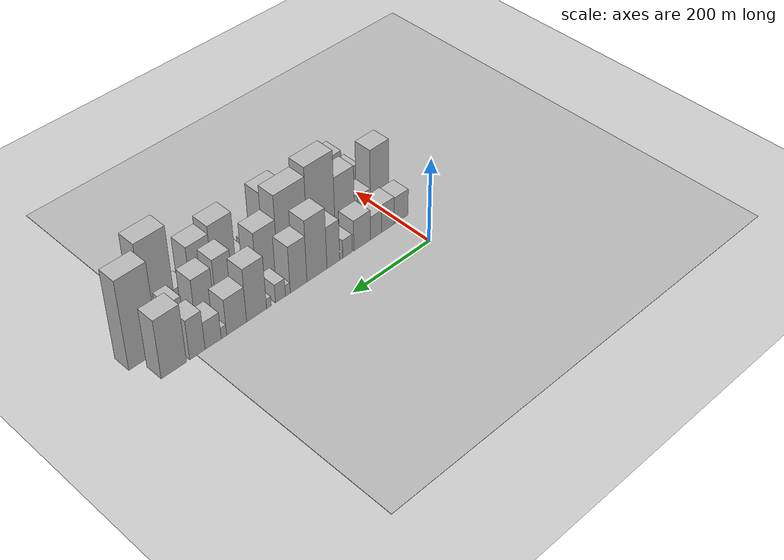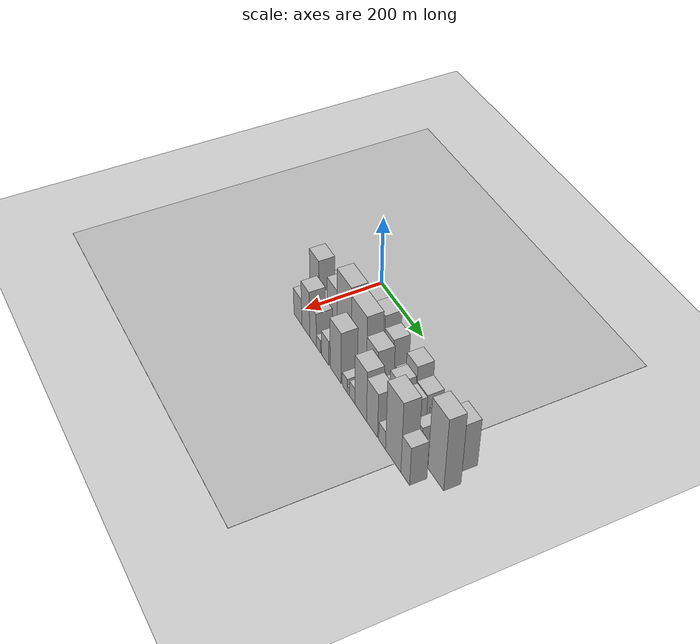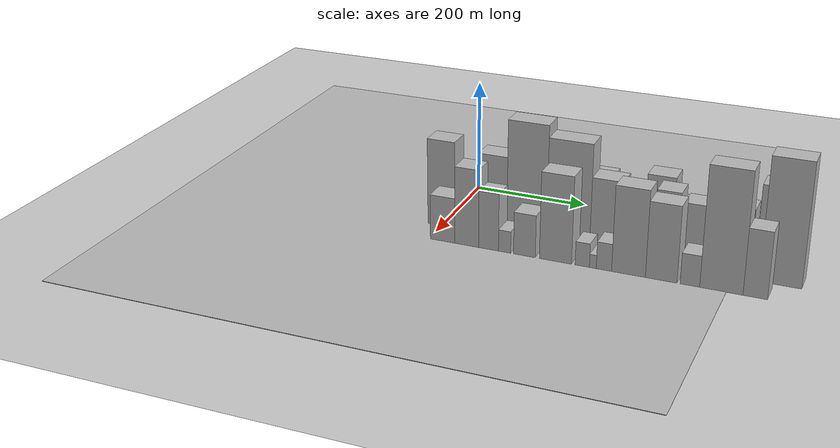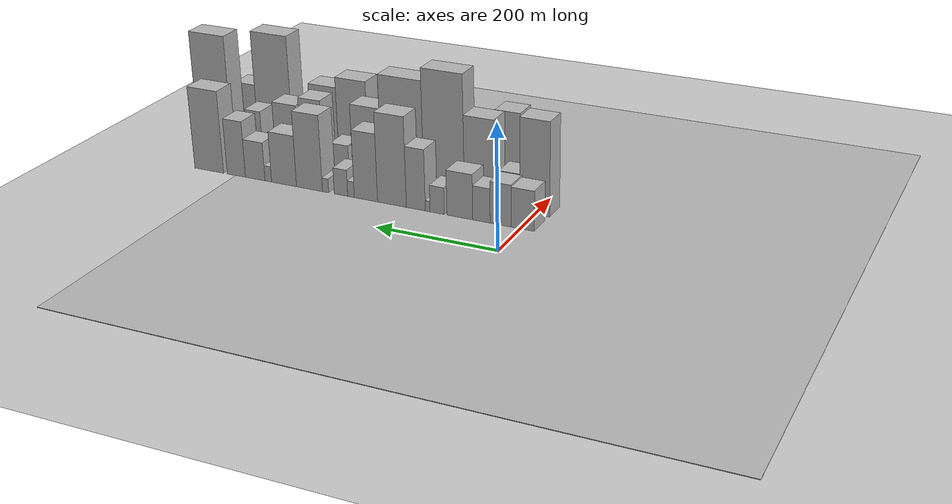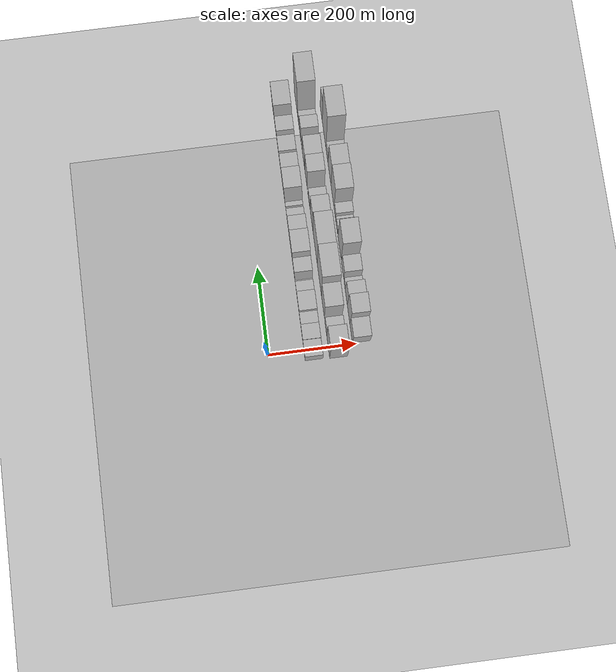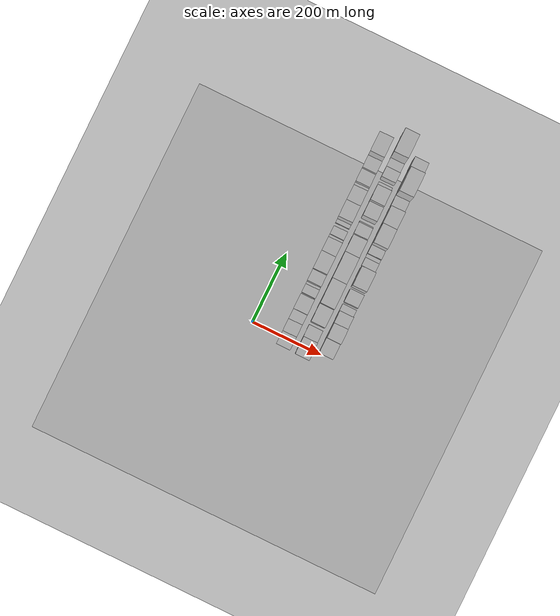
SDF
<sdf version="1.6">
 <world name="default">
  <include><name>ground_plane_1</name><uri>model://HANNAS_ground_plane</uri></include>
  <include>
   <name>ground_plane_2</name>
   <uri>model://HANNAS_ground_plane</uri>
   <pose>100 0 0  0 0 0</pose>
  </include>
  <model name="building_17">
   <static>1</static>
   <pose>100.0000 -4.5980 0 0.000000 0.000000 0.000000</pose>
   <link name="link">
    <pose>0 0 33.00 0 0 0</pose>
    <collision name="collision"><geometry><box><size>40.0000 37.7381 66.0000</size></box></geometry></collision>
    <visual name="visual">
     <cast_shadows>0</cast_shadows>
     <geometry><box><size>40.0000 37.7381 66.0000</size></box></geometry>
     <material>
      <script>
       <uri>model://HANNAS_wall/materials/scripts</uri>
       <uri>model://HANNAS_wall/materials/textures</uri>
       <name>vrc/HANNAS_wall</name>
      </script>
     </material>
    </visual>
   </link>
  </model>
  <model name="building_18">
   <static>1</static>
   <pose>100.0000 31.6166 0 0.000000 0.000000 0.000000</pose>
   <link name="link">
    <pose>0 0 34.50 0 0 0</pose>
    <collision name="collision"><geometry><box><size>40.0000 34.6912 69.0000</size></box></geometry></collision>
    <visual name="visual">
     <cast_shadows>0</cast_shadows>
     <geometry><box><size>40.0000 34.6912 69.0000</size></box></geometry>
     <material>
      <script>
       <uri>model://HANNAS_wall/materials/scripts</uri>
       <uri>model://HANNAS_wall/materials/textures</uri>
       <name>vrc/HANNAS_wall</name>
      </script>
     </material>
    </visual>
   </link>
  </model>
  <model name="building_19">
   <static>1</static>
   <pose>100.0000 63.4037 0 0.000000 0.000000 0.000000</pose>
   <link name="link">
    <pose>0 0 28.50 0 0 0</pose>
    <collision name="collision"><geometry><box><size>40.0000 28.8829 57.0000</size></box></geometry></collision>
    <visual name="visual">
     <cast_shadows>0</cast_shadows>
     <geometry><box><size>40.0000 28.8829 57.0000</size></box></geometry>
     <material>
      <script>
       <uri>model://HANNAS_wall/materials/scripts</uri>
       <uri>model://HANNAS_wall/materials/textures</uri>
       <name>vrc/HANNAS_wall</name>
      </script>
     </material>
    </visual>
   </link>
  </model>
  <model name="building_20">
   <static>1</static>
   <pose>100.0000 99.6497 0 0.000000 0.000000 0.000000</pose>
   <link name="link">
    <pose>0 0 37.50 0 0 0</pose>
    <collision name="collision"><geometry><box><size>40.0000 43.6092 75.0000</size></box></geometry></collision>
    <visual name="visual">
     <cast_shadows>0</cast_shadows>
     <geometry><box><size>40.0000 43.6092 75.0000</size></box></geometry>
     <material>
      <script>
       <uri>model://HANNAS_wall/materials/scripts</uri>
       <uri>model://HANNAS_wall/materials/textures</uri>
       <name>vrc/HANNAS_wall</name>
      </script>
     </material>
    </visual>
   </link>
  </model>
  <model name="building_21">
   <static>1</static>
   <pose>100.0000 137.8043 0 0.000000 0.000000 0.000000</pose>
   <link name="link">
    <pose>0 0 22.50 0 0 0</pose>
    <collision name="collision"><geometry><box><size>40.0000 24.7000 45.0000</size></box></geometry></collision>
    <visual name="visual">
     <cast_shadows>0</cast_shadows>
     <geometry><box><size>40.0000 24.7000 45.0000</size></box></geometry>
     <material>
      <script>
       <uri>model://HANNAS_wall/materials/scripts</uri>
       <uri>model://HANNAS_wall/materials/textures</uri>
       <name>vrc/HANNAS_wall</name>
      </script>
     </material>
    </visual>
   </link>
  </model>
  <model name="building_22">
   <static>1</static>
   <pose>100.0000 154.0484 0 0.000000 0.000000 0.000000</pose>
   <link name="link">
    <pose>0 0 9.00 0 0 0</pose>
    <collision name="collision"><geometry><box><size>40.0000 7.7882 18.0000</size></box></geometry></collision>
    <visual name="visual">
     <cast_shadows>0</cast_shadows>
     <geometry><box><size>40.0000 7.7882 18.0000</size></box></geometry>
     <material>
      <script>
       <uri>model://HANNAS_wall/materials/scripts</uri>
       <uri>model://HANNAS_wall/materials/textures</uri>
       <name>vrc/HANNAS_wall</name>
      </script>
     </material>
    </visual>
   </link>
  </model>
  <model name="building_23">
   <static>1</static>
   <pose>100.0000 174.3173 0 0.000000 0.000000 0.000000</pose>
   <link name="link">
    <pose>0 0 51.00 0 0 0</pose>
    <collision name="collision"><geometry><box><size>40.0000 32.7497 102.0000</size></box></geometry></collision>
    <visual name="visual">
     <cast_shadows>0</cast_shadows>
     <geometry><box><size>40.0000 32.7497 102.0000</size></box></geometry>
     <material>
      <script>
       <uri>model://HANNAS_wall/materials/scripts</uri>
       <uri>model://HANNAS_wall/materials/textures</uri>
       <name>vrc/HANNAS_wall</name>
      </script>
     </material>
    </visual>
   </link>
  </model>
  <model name="building_24">
   <static>1</static>
   <pose>100.0000 215.7689 0 0.000000 0.000000 0.000000</pose>
   <link name="link">
    <pose>0 0 75.00 0 0 0</pose>
    <collision name="collision"><geometry><box><size>40.0000 50.1534 150.0000</size></box></geometry></collision>
    <visual name="visual">
     <cast_shadows>0</cast_shadows>
     <geometry><box><size>40.0000 50.1534 150.0000</size></box></geometry>
     <material>
      <script>
       <uri>model://HANNAS_wall/materials/scripts</uri>
       <uri>model://HANNAS_wall/materials/textures</uri>
       <name>vrc/HANNAS_wall</name>
      </script>
     </material>
    </visual>
   </link>
  </model>
  <model name="building_25">
   <static>1</static>
   <pose>100.0000 261.4154 0 0.000000 0.000000 0.000000</pose>
   <link name="link">
    <pose>0 0 57.00 0 0 0</pose>
    <collision name="collision"><geometry><box><size>40.0000 41.1397 114.0000</size></box></geometry></collision>
    <visual name="visual">
     <cast_shadows>0</cast_shadows>
     <geometry><box><size>40.0000 41.1397 114.0000</size></box></geometry>
     <material>
      <script>
       <uri>model://HANNAS_wall/materials/scripts</uri>
       <uri>model://HANNAS_wall/materials/textures</uri>
       <name>vrc/HANNAS_wall</name>
      </script>
     </material>
    </visual>
   </link>
  </model>
  <model name="building_26">
   <static>1</static>
   <pose>100.0000 287.8555 0 0.000000 0.000000 0.000000</pose>
   <link name="link">
    <pose>0 0 13.50 0 0 0</pose>
    <collision name="collision"><geometry><box><size>40.0000 11.7404 27.0000</size></box></geometry></collision>
    <visual name="visual">
     <cast_shadows>0</cast_shadows>
     <geometry><box><size>40.0000 11.7404 27.0000</size></box></geometry>
     <material>
      <script>
       <uri>model://HANNAS_wall/materials/scripts</uri>
       <uri>model://HANNAS_wall/materials/textures</uri>
       <name>vrc/HANNAS_wall</name>
      </script>
     </material>
    </visual>
   </link>
  </model>
  <model name="building_27">
   <static>1</static>
   <pose>100.0000 305.8213 0 0.000000 0.000000 0.000000</pose>
   <link name="link">
    <pose>0 0 22.50 0 0 0</pose>
    <collision name="collision"><geometry><box><size>40.0000 24.1912 45.0000</size></box></geometry></collision>
    <visual name="visual">
     <cast_shadows>0</cast_shadows>
     <geometry><box><size>40.0000 24.1912 45.0000</size></box></geometry>
     <material>
      <script>
       <uri>model://HANNAS_wall/materials/scripts</uri>
       <uri>model://HANNAS_wall/materials/textures</uri>
       <name>vrc/HANNAS_wall</name>
      </script>
     </material>
    </visual>
   </link>
  </model>
  <model name="building_28">
   <static>1</static>
   <pose>100.0000 333.5547 0 0.000000 0.000000 0.000000</pose>
   <link name="link">
    <pose>0 0 12.00 0 0 0</pose>
    <collision name="collision"><geometry><box><size>40.0000 11.2756 24.0000</size></box></geometry></collision>
    <visual name="visual">
     <cast_shadows>0</cast_shadows>
     <geometry><box><size>40.0000 11.2756 24.0000</size></box></geometry>
     <material>
      <script>
       <uri>model://HANNAS_wall/materials/scripts</uri>
       <uri>model://HANNAS_wall/materials/textures</uri>
       <name>vrc/HANNAS_wall</name>
      </script>
     </material>
    </visual>
   </link>
  </model>
  <model name="building_29">
   <static>1</static>
   <pose>100.0000 362.8317 0 0.000000 0.000000 0.000000</pose>
   <link name="link">
    <pose>0 0 64.50 0 0 0</pose>
    <collision name="collision"><geometry><box><size>40.0000 47.2785 129.0000</size></box></geometry></collision>
    <visual name="visual">
     <cast_shadows>0</cast_shadows>
     <geometry><box><size>40.0000 47.2785 129.0000</size></box></geometry>
     <material>
      <script>
       <uri>model://HANNAS_wall/materials/scripts</uri>
       <uri>model://HANNAS_wall/materials/textures</uri>
       <name>vrc/HANNAS_wall</name>
      </script>
     </material>
    </visual>
   </link>
  </model>
  <model name="building_30">
   <static>1</static>
   <pose>100.0000 409.5287 0 0.000000 0.000000 0.000000</pose>
   <link name="link">
    <pose>0 0 43.50 0 0 0</pose>
    <collision name="collision"><geometry><box><size>40.0000 46.1154 87.0000</size></box></geometry></collision>
    <visual name="visual">
     <cast_shadows>0</cast_shadows>
     <geometry><box><size>40.0000 46.1154 87.0000</size></box></geometry>
     <material>
      <script>
       <uri>model://HANNAS_wall/materials/scripts</uri>
       <uri>model://HANNAS_wall/materials/textures</uri>
       <name>vrc/HANNAS_wall</name>
      </script>
     </material>
    </visual>
   </link>
  </model>
  <model name="building_31">
   <static>1</static>
   <pose>100.0000 438.7715 0 0.000000 0.000000 0.000000</pose>
   <link name="link">
    <pose>0 0 13.50 0 0 0</pose>
    <collision name="collision"><geometry><box><size>40.0000 12.3703 27.0000</size></box></geometry></collision>
    <visual name="visual">
     <cast_shadows>0</cast_shadows>
     <geometry><box><size>40.0000 12.3703 27.0000</size></box></geometry>
     <material>
      <script>
       <uri>model://HANNAS_wall/materials/scripts</uri>
       <uri>model://HANNAS_wall/materials/textures</uri>
       <name>vrc/HANNAS_wall</name>
      </script>
     </material>
    </visual>
   </link>
  </model>
  <model name="building_32">
   <static>1</static>
   <pose>100.0000 463.2627 0 0.000000 0.000000 0.000000</pose>
   <link name="link">
    <pose>0 0 33.00 0 0 0</pose>
    <collision name="collision"><geometry><box><size>40.0000 36.6119 66.0000</size></box></geometry></collision>
    <visual name="visual">
     <cast_shadows>0</cast_shadows>
     <geometry><box><size>40.0000 36.6119 66.0000</size></box></geometry>
     <material>
      <script>
       <uri>model://HANNAS_wall/materials/scripts</uri>
       <uri>model://HANNAS_wall/materials/textures</uri>
       <name>vrc/HANNAS_wall</name>
      </script>
     </material>
    </visual>
   </link>
  </model>
  <model name="building_33">
   <static>1</static>
   <pose>100.0000 498.8720 0 0.000000 0.000000 0.000000</pose>
   <link name="link">
    <pose>0 0 48.00 0 0 0</pose>
    <collision name="collision"><geometry><box><size>40.0000 34.6068 96.0000</size></box></geometry></collision>
    <visual name="visual">
     <cast_shadows>0</cast_shadows>
     <geometry><box><size>40.0000 34.6068 96.0000</size></box></geometry>
     <material>
      <script>
       <uri>model://HANNAS_wall/materials/scripts</uri>
       <uri>model://HANNAS_wall/materials/textures</uri>
       <name>vrc/HANNAS_wall</name>
      </script>
     </material>
    </visual>
   </link>
  </model>
  <model name="building_34">
   <static>1</static>
   <pose>100.0000 550.8680 0 0.000000 0.000000 0.000000</pose>
   <link name="link">
    <pose>0 0 70.50 0 0 0</pose>
    <collision name="collision"><geometry><box><size>40.0000 55.3852 141.0000</size></box></geometry></collision>
    <visual name="visual">
     <cast_shadows>0</cast_shadows>
     <geometry><box><size>40.0000 55.3852 141.0000</size></box></geometry>
     <material>
      <script>
       <uri>model://HANNAS_wall/materials/scripts</uri>
       <uri>model://HANNAS_wall/materials/textures</uri>
       <name>vrc/HANNAS_wall</name>
      </script>
     </material>
    </visual>
   </link>
  </model>
  <model name="building_53">
   <static>1</static>
   <pose>155.0000 -0.5026 0 0.000000 0.000000 0.000000</pose>
   <link name="link">
    <pose>0 0 78.00 0 0 0</pose>
    <collision name="collision"><geometry><box><size>40.0000 49.4370 156.0000</size></box></geometry></collision>
    <visual name="visual">
     <cast_shadows>0</cast_shadows>
     <geometry><box><size>40.0000 49.4370 156.0000</size></box></geometry>
     <material>
      <script>
       <uri>model://HANNAS_wall/materials/scripts</uri>
       <uri>model://HANNAS_wall/materials/textures</uri>
       <name>vrc/HANNAS_wall</name>
      </script>
     </material>
    </visual>
   </link>
  </model>
  <model name="building_54">
   <static>1</static>
   <pose>155.0000 41.4349 0 0.000000 0.000000 0.000000</pose>
   <link name="link">
    <pose>0 0 31.50 0 0 0</pose>
    <collision name="collision"><geometry><box><size>40.0000 34.4380 63.0000</size></box></geometry></collision>
    <visual name="visual">
     <cast_shadows>0</cast_shadows>
     <geometry><box><size>40.0000 34.4380 63.0000</size></box></geometry>
     <material>
      <script>
       <uri>model://HANNAS_wall/materials/scripts</uri>
       <uri>model://HANNAS_wall/materials/textures</uri>
       <name>vrc/HANNAS_wall</name>
      </script>
     </material>
    </visual>
   </link>
  </model>
  <model name="building_55">
   <static>1</static>
   <pose>155.0000 92.3172 0 0.000000 0.000000 0.000000</pose>
   <link name="link">
    <pose>0 0 72.00 0 0 0</pose>
    <collision name="collision"><geometry><box><size>40.0000 51.3265 144.0000</size></box></geometry></collision>
    <visual name="visual">
     <cast_shadows>0</cast_shadows>
     <geometry><box><size>40.0000 51.3265 144.0000</size></box></geometry>
     <material>
      <script>
       <uri>model://HANNAS_wall/materials/scripts</uri>
       <uri>model://HANNAS_wall/materials/textures</uri>
       <name>vrc/HANNAS_wall</name>
      </script>
     </material>
    </visual>
   </link>
  </model>
  <model name="building_56">
   <static>1</static>
   <pose>155.0000 153.0418 0 0.000000 0.000000 0.000000</pose>
   <link name="link">
    <pose>0 0 105.00 0 0 0</pose>
    <collision name="collision"><geometry><box><size>40.0000 70.1226 210.0000</size></box></geometry></collision>
    <visual name="visual">
     <cast_shadows>0</cast_shadows>
     <geometry><box><size>40.0000 70.1226 210.0000</size></box></geometry>
     <material>
      <script>
       <uri>model://HANNAS_wall/materials/scripts</uri>
       <uri>model://HANNAS_wall/materials/textures</uri>
       <name>vrc/HANNAS_wall</name>
      </script>
     </material>
    </visual>
   </link>
  </model>
  <model name="building_57">
   <static>1</static>
   <pose>155.0000 225.3445 0 0.000000 0.000000 0.000000</pose>
   <link name="link">
    <pose>0 0 94.50 0 0 0</pose>
    <collision name="collision"><geometry><box><size>40.0000 74.4828 189.0000</size></box></geometry></collision>
    <visual name="visual">
     <cast_shadows>0</cast_shadows>
     <geometry><box><size>40.0000 74.4828 189.0000</size></box></geometry>
     <material>
      <script>
       <uri>model://HANNAS_wall/materials/scripts</uri>
       <uri>model://HANNAS_wall/materials/textures</uri>
       <name>vrc/HANNAS_wall</name>
      </script>
     </material>
    </visual>
   </link>
  </model>
  <model name="building_58">
   <static>1</static>
   <pose>155.0000 288.5714 0 0.000000 0.000000 0.000000</pose>
   <link name="link">
    <pose>0 0 66.00 0 0 0</pose>
    <collision name="collision"><geometry><box><size>40.0000 51.9711 132.0000</size></box></geometry></collision>
    <visual name="visual">
     <cast_shadows>0</cast_shadows>
     <geometry><box><size>40.0000 51.9711 132.0000</size></box></geometry>
     <material>
      <script>
       <uri>model://HANNAS_wall/materials/scripts</uri>
       <uri>model://HANNAS_wall/materials/textures</uri>
       <name>vrc/HANNAS_wall</name>
      </script>
     </material>
    </visual>
   </link>
  </model>
  <model name="building_59">
   <static>1</static>
   <pose>155.0000 337.6571 0 0.000000 0.000000 0.000000</pose>
   <link name="link">
    <pose>0 0 30.00 0 0 0</pose>
    <collision name="collision"><geometry><box><size>40.0000 32.2003 60.0000</size></box></geometry></collision>
    <visual name="visual">
     <cast_shadows>0</cast_shadows>
     <geometry><box><size>40.0000 32.2003 60.0000</size></box></geometry>
     <material>
      <script>
       <uri>model://HANNAS_wall/materials/scripts</uri>
       <uri>model://HANNAS_wall/materials/textures</uri>
       <name>vrc/HANNAS_wall</name>
      </script>
     </material>
    </visual>
   </link>
  </model>
  <model name="building_60">
   <static>1</static>
   <pose>155.0000 356.8376 0 0.000000 0.000000 0.000000</pose>
   <link name="link">
    <pose>0 0 7.50 0 0 0</pose>
    <collision name="collision"><geometry><box><size>40.0000 6.1606 15.0000</size></box></geometry></collision>
    <visual name="visual">
     <cast_shadows>0</cast_shadows>
     <geometry><box><size>40.0000 6.1606 15.0000</size></box></geometry>
     <material>
      <script>
       <uri>model://HANNAS_wall/materials/scripts</uri>
       <uri>model://HANNAS_wall/materials/textures</uri>
       <name>vrc/HANNAS_wall</name>
      </script>
     </material>
    </visual>
   </link>
  </model>
  <model name="building_61">
   <static>1</static>
   <pose>155.0000 388.8558 0 0.000000 0.000000 0.000000</pose>
   <link name="link">
    <pose>0 0 64.50 0 0 0</pose>
    <collision name="collision"><geometry><box><size>40.0000 39.8759 129.0000</size></box></geometry></collision>
    <visual name="visual">
     <cast_shadows>0</cast_shadows>
     <geometry><box><size>40.0000 39.8759 129.0000</size></box></geometry>
     <material>
      <script>
       <uri>model://HANNAS_wall/materials/scripts</uri>
       <uri>model://HANNAS_wall/materials/textures</uri>
       <name>vrc/HANNAS_wall</name>
      </script>
     </material>
    </visual>
   </link>
  </model>
  <model name="building_62">
   <static>1</static>
   <pose>155.0000 435.7401 0 0.000000 0.000000 0.000000</pose>
   <link name="link">
    <pose>0 0 57.00 0 0 0</pose>
    <collision name="collision"><geometry><box><size>40.0000 43.8927 114.0000</size></box></geometry></collision>
    <visual name="visual">
     <cast_shadows>0</cast_shadows>
     <geometry><box><size>40.0000 43.8927 114.0000</size></box></geometry>
     <material>
      <script>
       <uri>model://HANNAS_wall/materials/scripts</uri>
       <uri>model://HANNAS_wall/materials/textures</uri>
       <name>vrc/HANNAS_wall</name>
      </script>
     </material>
    </visual>
   </link>
  </model>
  <model name="building_63">
   <static>1</static>
   <pose>155.0000 461.4348 0 0.000000 0.000000 0.000000</pose>
   <link name="link">
    <pose>0 0 9.00 0 0 0</pose>
    <collision name="collision"><geometry><box><size>40.0000 7.4967 18.0000</size></box></geometry></collision>
    <visual name="visual">
     <cast_shadows>0</cast_shadows>
     <geometry><box><size>40.0000 7.4967 18.0000</size></box></geometry>
     <material>
      <script>
       <uri>model://HANNAS_wall/materials/scripts</uri>
       <uri>model://HANNAS_wall/materials/textures</uri>
       <name>vrc/HANNAS_wall</name>
      </script>
     </material>
    </visual>
   </link>
  </model>
  <model name="building_64">
   <static>1</static>
   <pose>155.0000 469.5777 0 0.000000 0.000000 0.000000</pose>
   <link name="link">
    <pose>0 0 9.00 0 0 0</pose>
    <collision name="collision"><geometry><box><size>40.0000 8.7890 18.0000</size></box></geometry></collision>
    <visual name="visual">
     <cast_shadows>0</cast_shadows>
     <geometry><box><size>40.0000 8.7890 18.0000</size></box></geometry>
     <material>
      <script>
       <uri>model://HANNAS_wall/materials/scripts</uri>
       <uri>model://HANNAS_wall/materials/textures</uri>
       <name>vrc/HANNAS_wall</name>
      </script>
     </material>
    </visual>
   </link>
  </model>
  <model name="building_65">
   <static>1</static>
   <pose>155.0000 496.5328 0 0.000000 0.000000 0.000000</pose>
   <link name="link">
    <pose>0 0 46.50 0 0 0</pose>
    <collision name="collision"><geometry><box><size>40.0000 29.1213 93.0000</size></box></geometry></collision>
    <visual name="visual">
     <cast_shadows>0</cast_shadows>
     <geometry><box><size>40.0000 29.1213 93.0000</size></box></geometry>
     <material>
      <script>
       <uri>model://HANNAS_wall/materials/scripts</uri>
       <uri>model://HANNAS_wall/materials/textures</uri>
       <name>vrc/HANNAS_wall</name>
      </script>
     </material>
    </visual>
   </link>
  </model>
  <model name="building_66">
   <static>1</static>
   <pose>155.0000 525.5762 0 0.000000 0.000000 0.000000</pose>
   <link name="link">
    <pose>0 0 25.50 0 0 0</pose>
    <collision name="collision"><geometry><box><size>40.0000 28.9656 51.0000</size></box></geometry></collision>
    <visual name="visual">
     <cast_shadows>0</cast_shadows>
     <geometry><box><size>40.0000 28.9656 51.0000</size></box></geometry>
     <material>
      <script>
       <uri>model://HANNAS_wall/materials/scripts</uri>
       <uri>model://HANNAS_wall/materials/textures</uri>
       <name>vrc/HANNAS_wall</name>
      </script>
     </material>
    </visual>
   </link>
  </model>
  <model name="building_67">
   <static>1</static>
   <pose>155.0000 572.9948 0 0.000000 0.000000 0.000000</pose>
   <link name="link">
    <pose>0 0 106.50 0 0 0</pose>
    <collision name="collision"><geometry><box><size>40.0000 65.8716 213.0000</size></box></geometry></collision>
    <visual name="visual">
     <cast_shadows>0</cast_shadows>
     <geometry><box><size>40.0000 65.8716 213.0000</size></box></geometry>
     <material>
      <script>
       <uri>model://HANNAS_wall/materials/scripts</uri>
       <uri>model://HANNAS_wall/materials/textures</uri>
       <name>vrc/HANNAS_wall</name>
      </script>
     </material>
    </visual>
   </link>
  </model>
  <model name="building_82">
   <static>1</static>
   <pose>210.0000 25.0459 0 0.000000 0.000000 0.000000</pose>
   <link name="link">
    <pose>0 0 40.50 0 0 0</pose>
    <collision name="collision"><geometry><box><size>40.0000 43.9723 81.0000</size></box></geometry></collision>
    <visual name="visual">
     <cast_shadows>0</cast_shadows>
     <geometry><box><size>40.0000 43.9723 81.0000</size></box></geometry>
     <material>
      <script>
       <uri>model://HANNAS_wall/materials/scripts</uri>
       <uri>model://HANNAS_wall/materials/textures</uri>
       <name>vrc/HANNAS_wall</name>
      </script>
     </material>
    </visual>
   </link>
  </model>
  <model name="building_83">
   <static>1</static>
   <pose>210.0000 68.1916 0 0.000000 0.000000 0.000000</pose>
   <link name="link">
    <pose>0 0 69.00 0 0 0</pose>
    <collision name="collision"><geometry><box><size>40.0000 42.3192 138.0000</size></box></geometry></collision>
    <visual name="visual">
     <cast_shadows>0</cast_shadows>
     <geometry><box><size>40.0000 42.3192 138.0000</size></box></geometry>
     <material>
      <script>
       <uri>model://HANNAS_wall/materials/scripts</uri>
       <uri>model://HANNAS_wall/materials/textures</uri>
       <name>vrc/HANNAS_wall</name>
      </script>
     </material>
    </visual>
   </link>
  </model>
  <model name="building_84">
   <static>1</static>
   <pose>210.0000 106.8190 0 0.000000 0.000000 0.000000</pose>
   <link name="link">
    <pose>0 0 51.00 0 0 0</pose>
    <collision name="collision"><geometry><box><size>40.0000 34.9354 102.0000</size></box></geometry></collision>
    <visual name="visual">
     <cast_shadows>0</cast_shadows>
     <geometry><box><size>40.0000 34.9354 102.0000</size></box></geometry>
     <material>
      <script>
       <uri>model://HANNAS_wall/materials/scripts</uri>
       <uri>model://HANNAS_wall/materials/textures</uri>
       <name>vrc/HANNAS_wall</name>
      </script>
     </material>
    </visual>
   </link>
  </model>
  <model name="building_85">
   <static>1</static>
   <pose>210.0000 134.9328 0 0.000000 0.000000 0.000000</pose>
   <link name="link">
    <pose>0 0 19.50 0 0 0</pose>
    <collision name="collision"><geometry><box><size>40.0000 21.2922 39.0000</size></box></geometry></collision>
    <visual name="visual">
     <cast_shadows>0</cast_shadows>
     <geometry><box><size>40.0000 21.2922 39.0000</size></box></geometry>
     <material>
      <script>
       <uri>model://HANNAS_wall/materials/scripts</uri>
       <uri>model://HANNAS_wall/materials/textures</uri>
       <name>vrc/HANNAS_wall</name>
      </script>
     </material>
    </visual>
   </link>
  </model>
  <model name="building_86">
   <static>1</static>
   <pose>210.0000 169.3891 0 0.000000 0.000000 0.000000</pose>
   <link name="link">
    <pose>0 0 37.50 0 0 0</pose>
    <collision name="collision"><geometry><box><size>40.0000 37.6203 75.0000</size></box></geometry></collision>
    <visual name="visual">
     <cast_shadows>0</cast_shadows>
     <geometry><box><size>40.0000 37.6203 75.0000</size></box></geometry>
     <material>
      <script>
       <uri>model://HANNAS_wall/materials/scripts</uri>
       <uri>model://HANNAS_wall/materials/textures</uri>
       <name>vrc/HANNAS_wall</name>
      </script>
     </material>
    </visual>
   </link>
  </model>
  <model name="building_87">
   <static>1</static>
   <pose>210.0000 222.4926 0 0.000000 0.000000 0.000000</pose>
   <link name="link">
    <pose>0 0 76.50 0 0 0</pose>
    <collision name="collision"><geometry><box><size>40.0000 54.5867 153.0000</size></box></geometry></collision>
    <visual name="visual">
     <cast_shadows>0</cast_shadows>
     <geometry><box><size>40.0000 54.5867 153.0000</size></box></geometry>
     <material>
      <script>
       <uri>model://HANNAS_wall/materials/scripts</uri>
       <uri>model://HANNAS_wall/materials/textures</uri>
       <name>vrc/HANNAS_wall</name>
      </script>
     </material>
    </visual>
   </link>
  </model>
  <model name="building_88">
   <static>1</static>
   <pose>210.0000 267.6852 0 0.000000 0.000000 0.000000</pose>
   <link name="link">
    <pose>0 0 21.00 0 0 0</pose>
    <collision name="collision"><geometry><box><size>40.0000 23.7984 42.0000</size></box></geometry></collision>
    <visual name="visual">
     <cast_shadows>0</cast_shadows>
     <geometry><box><size>40.0000 23.7984 42.0000</size></box></geometry>
     <material>
      <script>
       <uri>model://HANNAS_wall/materials/scripts</uri>
       <uri>model://HANNAS_wall/materials/textures</uri>
       <name>vrc/HANNAS_wall</name>
      </script>
     </material>
    </visual>
   </link>
  </model>
  <model name="building_89">
   <static>1</static>
   <pose>210.0000 285.3557 0 0.000000 0.000000 0.000000</pose>
   <link name="link">
    <pose>0 0 12.00 0 0 0</pose>
    <collision name="collision"><geometry><box><size>40.0000 11.5427 24.0000</size></box></geometry></collision>
    <visual name="visual">
     <cast_shadows>0</cast_shadows>
     <geometry><box><size>40.0000 11.5427 24.0000</size></box></geometry>
     <material>
      <script>
       <uri>model://HANNAS_wall/materials/scripts</uri>
       <uri>model://HANNAS_wall/materials/textures</uri>
       <name>vrc/HANNAS_wall</name>
      </script>
     </material>
    </visual>
   </link>
  </model>
  <model name="building_90">
   <static>1</static>
   <pose>210.0000 303.7723 0 0.000000 0.000000 0.000000</pose>
   <link name="link">
    <pose>0 0 24.00 0 0 0</pose>
    <collision name="collision"><geometry><box><size>40.0000 25.2905 48.0000</size></box></geometry></collision>
    <visual name="visual">
     <cast_shadows>0</cast_shadows>
     <geometry><box><size>40.0000 25.2905 48.0000</size></box></geometry>
     <material>
      <script>
       <uri>model://HANNAS_wall/materials/scripts</uri>
       <uri>model://HANNAS_wall/materials/textures</uri>
       <name>vrc/HANNAS_wall</name>
      </script>
     </material>
    </visual>
   </link>
  </model>
  <model name="building_91">
   <static>1</static>
   <pose>210.0000 344.0271 0 0.000000 0.000000 0.000000</pose>
   <link name="link">
    <pose>0 0 75.00 0 0 0</pose>
    <collision name="collision"><geometry><box><size>40.0000 55.2190 150.0000</size></box></geometry></collision>
    <visual name="visual">
     <cast_shadows>0</cast_shadows>
     <geometry><box><size>40.0000 55.2190 150.0000</size></box></geometry>
     <material>
      <script>
       <uri>model://HANNAS_wall/materials/scripts</uri>
       <uri>model://HANNAS_wall/materials/textures</uri>
       <name>vrc/HANNAS_wall</name>
      </script>
     </material>
    </visual>
   </link>
  </model>
  <model name="building_92">
   <static>1</static>
   <pose>210.0000 396.9913 0 0.000000 0.000000 0.000000</pose>
   <link name="link">
    <pose>0 0 66.00 0 0 0</pose>
    <collision name="collision"><geometry><box><size>40.0000 50.7094 132.0000</size></box></geometry></collision>
    <visual name="visual">
     <cast_shadows>0</cast_shadows>
     <geometry><box><size>40.0000 50.7094 132.0000</size></box></geometry>
     <material>
      <script>
       <uri>model://HANNAS_wall/materials/scripts</uri>
       <uri>model://HANNAS_wall/materials/textures</uri>
       <name>vrc/HANNAS_wall</name>
      </script>
     </material>
    </visual>
   </link>
  </model>
  <model name="building_93">
   <static>1</static>
   <pose>210.0000 442.7943 0 0.000000 0.000000 0.000000</pose>
   <link name="link">
    <pose>0 0 27.00 0 0 0</pose>
    <collision name="collision"><geometry><box><size>40.0000 30.8965 54.0000</size></box></geometry></collision>
    <visual name="visual">
     <cast_shadows>0</cast_shadows>
     <geometry><box><size>40.0000 30.8965 54.0000</size></box></geometry>
     <material>
      <script>
       <uri>model://HANNAS_wall/materials/scripts</uri>
       <uri>model://HANNAS_wall/materials/textures</uri>
       <name>vrc/HANNAS_wall</name>
      </script>
     </material>
    </visual>
   </link>
  </model>
  <model name="building_94">
   <static>1</static>
   <pose>210.0000 491.9332 0 0.000000 0.000000 0.000000</pose>
   <link name="link">
    <pose>0 0 103.50 0 0 0</pose>
    <collision name="collision"><geometry><box><size>40.0000 67.3814 207.0000</size></box></geometry></collision>
    <visual name="visual">
     <cast_shadows>0</cast_shadows>
     <geometry><box><size>40.0000 67.3814 207.0000</size></box></geometry>
     <material>
      <script>
       <uri>model://HANNAS_wall/materials/scripts</uri>
       <uri>model://HANNAS_wall/materials/textures</uri>
       <name>vrc/HANNAS_wall</name>
      </script>
     </material>
    </visual>
   </link>
  </model>
  <model name="building_95">
   <static>1</static>
   <pose>210.0000 544.4200 0 0.000000 0.000000 0.000000</pose>
   <link name="link">
    <pose>0 0 57.00 0 0 0</pose>
    <collision name="collision"><geometry><box><size>40.0000 37.5923 114.0000</size></box></geometry></collision>
    <visual name="visual">
     <cast_shadows>0</cast_shadows>
     <geometry><box><size>40.0000 37.5923 114.0000</size></box></geometry>
     <material>
      <script>
       <uri>model://HANNAS_wall/materials/scripts</uri>
       <uri>model://HANNAS_wall/materials/textures</uri>
       <name>vrc/HANNAS_wall</name>
      </script>
     </material>
    </visual>
   </link>
  </model>
 </world>
</sdf>
